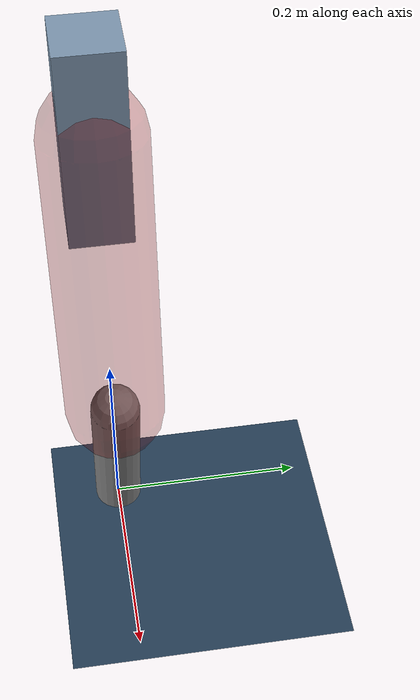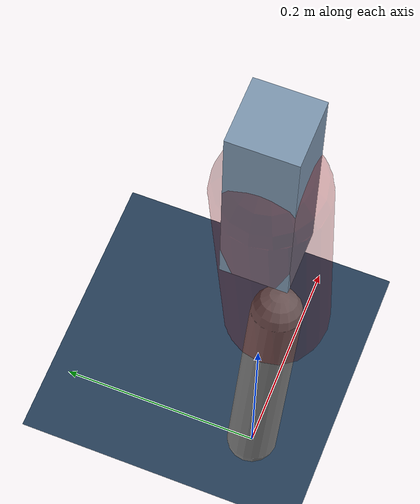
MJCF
<mujoco model="Hopper2D">
	<compiler inertiafromgeom="true" angle="radian" />
	<option timestep="0.001" integrator="implicit" cone="elliptic" solver="Newton" tolerance="1e-10" />

	<default>
		<geom contype="1" conaffinity="1" condim="3" friction="2 0.005 0.0001" solref="0.005 1" />
		<joint limited="true" damping="0.1" />
	</default>

	<asset>
		<texture name="skybox" type="skybox" builtin="gradient" rgb1=".4 .6 .8" rgb2="0 0 0" width="800" height="800" />
		<texture name="grid" type="2d" builtin="checker" rgb1=".1 .2 .3" rgb2=".2 .3 .4" width="300" height="300" mark="edge" markrgb=".2 .3 .4" />
		<material name="ground" texture="grid" texrepeat="1 1" texuniform="true" reflectance="0.1" />
		<material name="leg" rgba="0.5 0.6 0.7 1" />
	</asset>

	<worldbody>

		<geom name="floor" type="plane" size="5 5 0.25" material="ground" />

		<light directional="false" diffuse="0.8 0.8 0.8" specular="0.3 0.3 0.3" pos="0 0 2" dir="0 0 -1" />
		<light mode="targetbodycom" target="base" directional="false" diffuse="0.8 0.8 0.8" specular="0.3 0.3 0.3" pos="0 0 2" dir="0 0 -1" />

		<camera name="fixed" pos="0 -2 1" xyaxes="1 0 0 0 0 1" />
		<camera name="tracking" mode="trackcom" pos="0 -3 1" />

		<body name="root" pos="0 0 0.49626113997846544">
			<joint name="slide_x" type="slide" axis="1 0 0" range="-100 100" />
			<joint name="slide_z" type="slide" axis="0 0 1" range="0 10" />

			<body name="base" pos="0 0 0">
				<geom name="torso" type="box" size="0.03 0.03 0.1" mass="3.1470000000000002" material="leg" />

				<body name="link1" pos="0 0 0" euler="0 1.409723629489031 0">
					<joint type="hinge" axis="0 -1 0" pos="0 0 0" name="hinge1" limited="true" range="-3.14 3.14" stiffness="0" damping="0.1" />
					<geom name="thigh" type="capsule" fromto="0 0 0 0.3052060528737425 0 0" size="0.05" rgba="0.5 0 0 0.3" mass="1.0028563427591046" />

					<body name="link2" pos="0.3052060528737425 0 0" euler="0 0.4070001619615468 0">
						<joint type="hinge" axis="0 -1 0" pos="0 0 0" name="hinge2" limited="true" range="-3.14 3.14" stiffness="0" damping="0.1" />
						<geom name="shank" type="capsule" fromto="0 0 0 0.20105508710472297 0 0" size="0.025" mass="0.4017495783942507" />

					</body>
				</body>
			</body>
		</body>
	</worldbody>

	<actuator>
		<motor name="torque1" joint="hinge1" ctrlrange="-98.98258724465394 98.98258724465394" ctrllimited="true" gear="1" />
		<motor name="torque2" joint="hinge2" ctrlrange="-101.5960580679961 101.5960580679961" ctrllimited="true" gear="1" />
	</actuator>
</mujoco>
